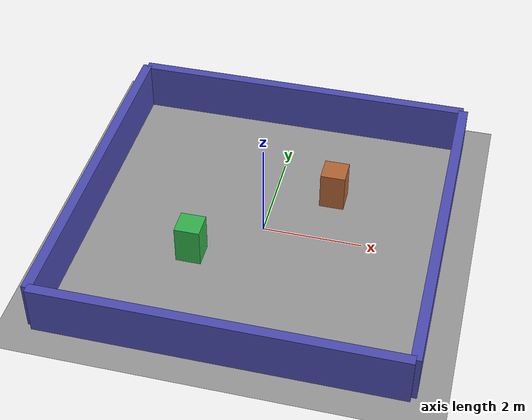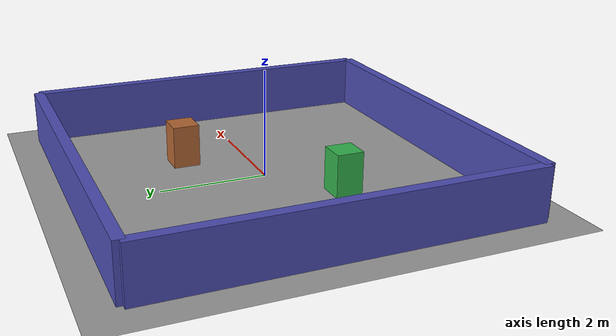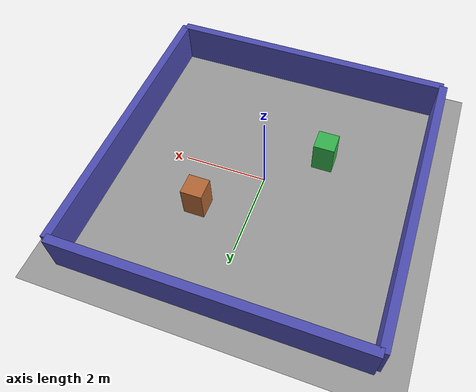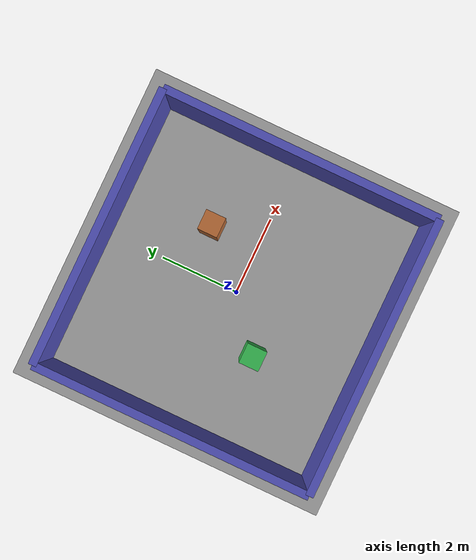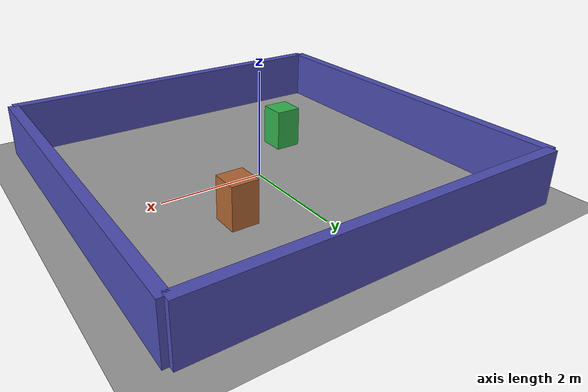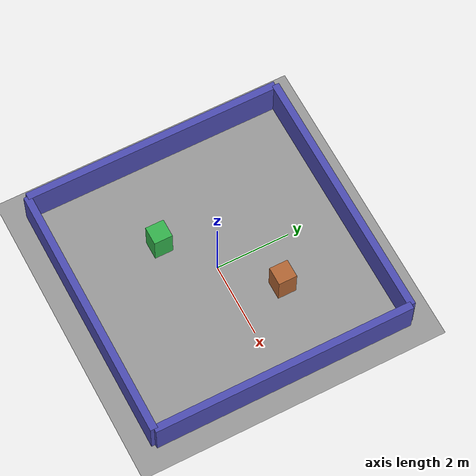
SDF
<?xml version="1.0" ?>
<sdf version="1.10">
  <world name="room_7x7">
    <scene>
      <ambient>0.4 0.4 0.4 1</ambient>
      <background>0.7 0.7 0.7 1</background>
    </scene>

    <physics name="1ms" type="ignored">
      <max_step_size>0.001</max_step_size>
      <real_time_factor>1</real_time_factor>
    </physics>

    <plugin filename="gz-sim-physics-system" name="gz::sim::systems::Physics"></plugin>
    <plugin filename="gz-sim-user-commands-system" name="gz::sim::systems::UserCommands"></plugin>
    <plugin filename="gz-sim-scene-broadcaster-system" name="gz::sim::systems::SceneBroadcaster"></plugin>

    <light type="directional" name="sun">
      <pose>0 0 10 0 0 0</pose>
      <intensity>0.8</intensity>
      <cast_shadows>true</cast_shadows>
    </light>

    <model name="ground_plane">
      <static>true</static>
      <link name="link">
        <collision name="collision">
          <geometry>
            <plane><normal>0 0 1</normal><size>40 40</size></plane>
          </geometry>
        </collision>
        <visual name="visual">
          <geometry>
            <plane><normal>0 0 1</normal><size>40 40</size></plane>
          </geometry>
          <material>
            <ambient>0.6 0.6 0.6 1</ambient>
            <diffuse>0.6 0.6 0.6 1</diffuse>
            <specular>0.2 0.2 0.2 1</specular>
          </material>
        </visual>
      </link>
    </model>

    <!-- 围墙：7x7 房间（墙中心在 ±3.5，墙长 7） -->
    <model name="walls">
      <static>true</static>
      <link name="link">
        <collision name="w_n"><pose>0 3.5 0.5 0 0 0</pose><geometry><box><size>7 0.2 1</size></box></geometry></collision>
        <visual name="vw_n"><pose>0 3.5 0.5 0 0 0</pose><geometry><box><size>7 0.2 1</size></box></geometry><material><ambient>0.3 0.3 0.7 1</ambient><diffuse>0.3 0.3 0.7 1</diffuse><specular>0.1 0.1 0.1 1</specular></material></visual>
        <collision name="w_s"><pose>0 -3.5 0.5 0 0 0</pose><geometry><box><size>7 0.2 1</size></box></geometry></collision>
        <visual name="vw_s"><pose>0 -3.5 0.5 0 0 0</pose><geometry><box><size>7 0.2 1</size></box></geometry><material><ambient>0.3 0.3 0.7 1</ambient><diffuse>0.3 0.3 0.7 1</diffuse><specular>0.1 0.1 0.1 1</specular></material></visual>
        <collision name="w_e"><pose>3.5 0 0.5 0 0 0</pose><geometry><box><size>0.2 7 1</size></box></geometry></collision>
        <visual name="vw_e"><pose>3.5 0 0.5 0 0 0</pose><geometry><box><size>0.2 7 1</size></box></geometry><material><ambient>0.3 0.3 0.7 1</ambient><diffuse>0.3 0.3 0.7 1</diffuse><specular>0.1 0.1 0.1 1</specular></material></visual>
        <collision name="w_w"><pose>-3.5 0 0.5 0 0 0</pose><geometry><box><size>0.2 7 1</size></box></geometry></collision>
        <visual name="vw_w"><pose>-3.5 0 0.5 0 0 0</pose><geometry><box><size>0.2 7 1</size></box></geometry><material><ambient>0.3 0.3 0.7 1</ambient><diffuse>0.3 0.3 0.7 1</diffuse><specular>0.1 0.1 0.1 1</specular></material></visual>
      </link>
    </model>

    <!-- 箱障 A: center (1.2, 1.2), 0.5x0.5x0.8 -->
    <model name="box_a">
      <static>true</static>
      <pose>1.2 1.2 0.4 0 0 0</pose>
      <link name="link">
        <collision name="c"><geometry><box><size>0.5 0.5 0.8</size></box></geometry></collision>
        <visual name="v"><geometry><box><size>0.5 0.5 0.8</size></box></geometry><material><ambient>0.7 0.4 0.2 1</ambient><diffuse>0.7 0.4 0.2 1</diffuse><specular>0.1 0.1 0.1 1</specular></material></visual>
      </link>
    </model>

    <!-- 箱障 B: center (-1.2, -1.0), 0.5x0.5x0.8 -->
    <model name="box_b">
      <static>true</static>
      <pose>-1.2 -1.0 0.4 0 0 0</pose>
      <link name="link">
        <collision name="c"><geometry><box><size>0.5 0.5 0.8</size></box></geometry></collision>
        <visual name="v"><geometry><box><size>0.5 0.5 0.8</size></box></geometry><material><ambient>0.2 0.7 0.3 1</ambient><diffuse>0.2 0.7 0.3 1</diffuse><specular>0.1 0.1 0.1 1</specular></material></visual>
      </link>
    </model>

  </world>
</sdf>
